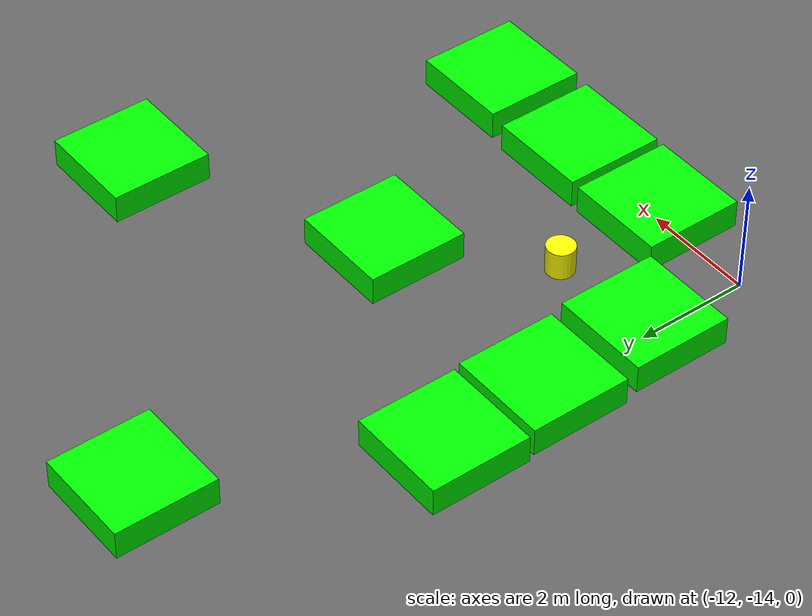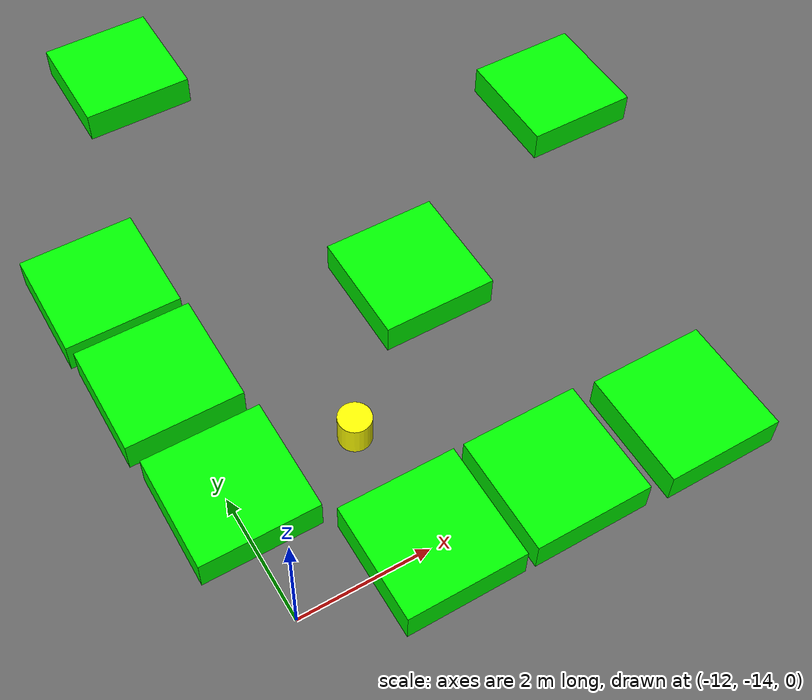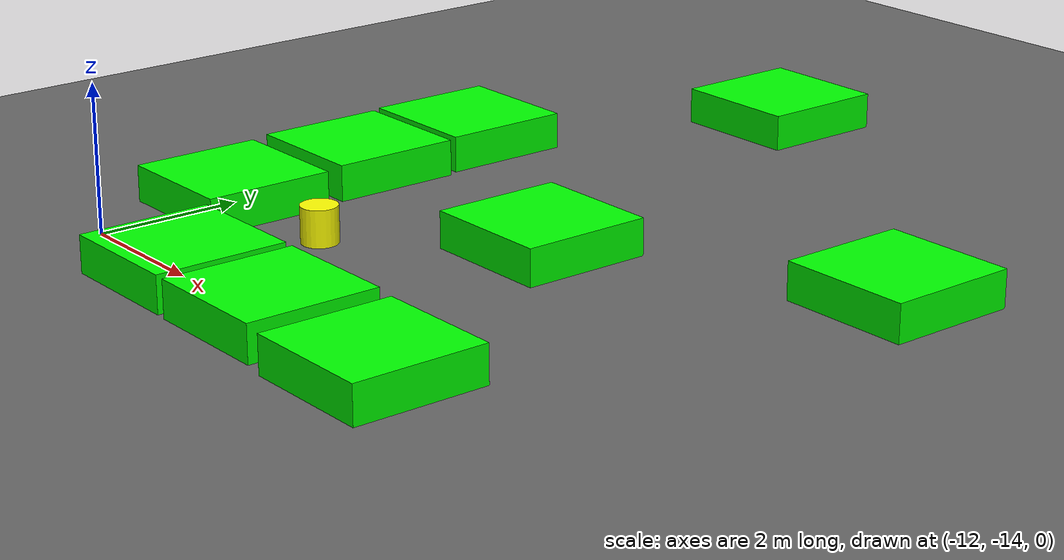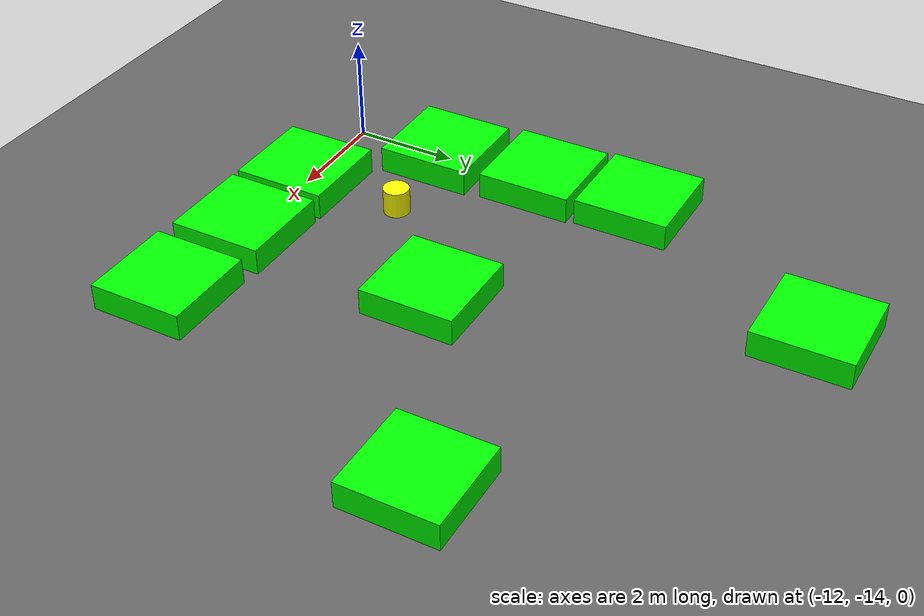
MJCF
<mujoco model="lvl5_corridor_obs10_dlong_depth3_seed1091">
    <compiler angle="degree" coordinate="local" inertiafromgeom="true"/>
    <option integrator="RK4" timestep="0.01"/>

    <asset>
        <texture builtin="gradient" height="100" rgb1="0.6 0.8 1" rgb2="0 0 0" type="skybox" width="100"/>
        <texture name="floor_texture" type="2d" builtin="checker" width="100" height="100" rgb1="0 0 0" rgb2="0.8 0.8 0.8"/>
        <material name="MatPlane" reflectance="0.5" shininess="1" specular="1" texrepeat="10 10" texture="floor_texture"/>
    </asset>

    <!-- Excluding the contact between the agent and the goal, and the agent and the floor -->
    <contact>
        <exclude body1="agent" body2="goal"/>
        <exclude body1 = "agent" body2 = "floor"/>
    </contact>

    <extension>
        <plugin plugin = "mujoco.pid">
            <instance name = "pid1">
                <config key="kp" value="2"/>
                <config key="ki" value="0"/>
                <config key="kd" value="55"/>
            </instance>
        </plugin>
    </extension>

    <worldbody>
        <light cutoff="100" diffuse="1 1 1" dir="-0 0 -1.3" directional="true" exponent="1" pos="0 0 1.3" specular=".1 .1 .1"/>
        <body name="floor" pos="0 0 0">
            <geom name="floor_geom" type="plane" size="20 20 0.1" material="MatPlane"/>
        </body>

                <body name="goal" pos="0.0000 0.0000 0">
            <geom name="goal_geom" type="plane" size="0.5 0.5 1" pos="0 0 0" rgba="1 0 0 1"/>
        </body>

                <body name="agent" pos="-10.0000 -12.0000 0.250">
            <joint name="j1" type="slide" axis ="1 0 0 "/>
            <joint name="j2" type="slide" axis ="0 1 0 "/>
            <geom name="agent_geom" type="cylinder" size="0.25 0.25 0.250" rgba="1 1 0 1"/>
        </body>

        <body name="obstacle1" pos="-10.0281 -3.9317 0.250">  <geom name="obstacle1_geom" type="box" size="0.9000 0.9000 0.250" rgba="0 1 0 1"/></body>
        <body name="obstacle2" pos="-12.0929 -8.0456 0.250">  <geom name="obstacle2_geom" type="box" size="0.9000 0.9000 0.250" rgba="0 1 0 1"/></body>
        <body name="obstacle3" pos="-3.9345 -7.9595 0.250">  <geom name="obstacle3_geom" type="box" size="0.9000 0.9000 0.250" rgba="0 1 0 1"/></body>
        <body name="obstacle4" pos="-12.0286 -9.9781 0.250">  <geom name="obstacle4_geom" type="box" size="0.9000 0.9000 0.250" rgba="0 1 0 1"/></body>
        <body name="obstacle5" pos="-7.9609 -10.0617 0.250">  <geom name="obstacle5_geom" type="box" size="0.9000 0.9000 0.250" rgba="0 1 0 1"/></body>
        <body name="obstacle6" pos="-11.9361 -12.0554 0.250">  <geom name="obstacle6_geom" type="box" size="0.9000 0.9000 0.250" rgba="0 1 0 1"/></body>
        <body name="obstacle7" pos="-9.9930 -13.9980 0.250">  <geom name="obstacle7_geom" type="box" size="0.9000 0.9000 0.250" rgba="0 1 0 1"/></body>
        <body name="obstacle8" pos="-8.0425 -14.0079 0.250">  <geom name="obstacle8_geom" type="box" size="0.9000 0.9000 0.250" rgba="0 1 0 1"/></body>
        <body name="obstacle9" pos="-5.9221 -14.0722 0.250">  <geom name="obstacle9_geom" type="box" size="0.9000 0.9000 0.250" rgba="0 1 0 1"/></body>

    </worldbody>

    <sensor>
<!-- SENSORS -->

        <distance name="dist1" geom1="agent_geom" geom2="obstacle1_geom" cutoff="1.5"/>
        <distance name="dist2" geom1="agent_geom" geom2="obstacle2_geom" cutoff="1.5"/>
        <distance name="dist3" geom1="agent_geom" geom2="obstacle3_geom" cutoff="1.5"/>
        <distance name="dist4" geom1="agent_geom" geom2="obstacle4_geom" cutoff="1.5"/>
        <distance name="dist5" geom1="agent_geom" geom2="obstacle5_geom" cutoff="1.5"/>
        <distance name="dist6" geom1="agent_geom" geom2="obstacle6_geom" cutoff="1.5"/>
        <distance name="dist7" geom1="agent_geom" geom2="obstacle7_geom" cutoff="1.5"/>
        <distance name="dist8" geom1="agent_geom" geom2="obstacle8_geom" cutoff="1.5"/>
        <distance name="dist9" geom1="agent_geom" geom2="obstacle9_geom" cutoff="1.5"/>
</sensor>

    <actuator>
        <plugin joint="j1" plugin="mujoco.pid" instance="pid1" />
        <plugin joint="j2" plugin="mujoco.pid" instance="pid1"/>
    </actuator>
</mujoco>
